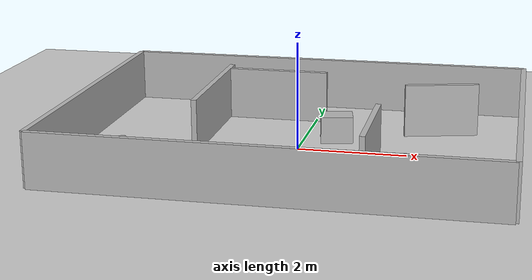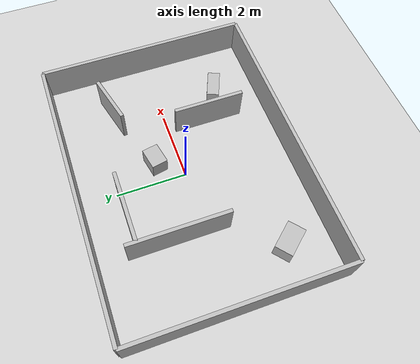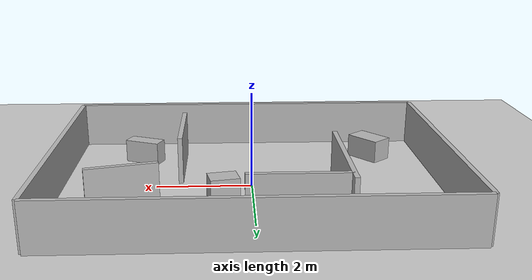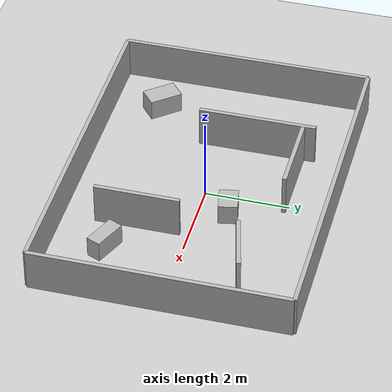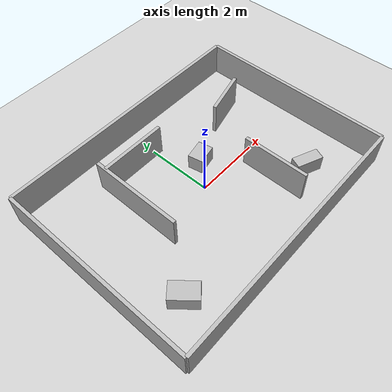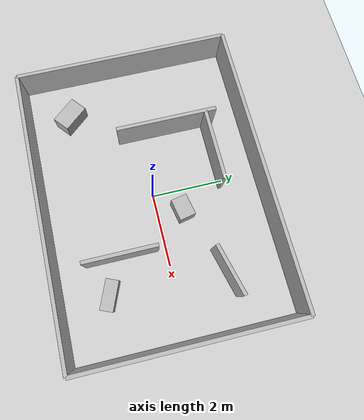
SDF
<?xml version="1.0" ?>
<sdf version="1.6">
  <world name="asymmetric_world">

    <include>
      <uri>model://sun</uri>
    </include>

    <include>
      <uri>model://ground_plane</uri>
    </include>

    <physics name="default_physics" default="0" type="ode">
      <max_step_size>0.001</max_step_size>
      <real_time_factor>1.0</real_time_factor>
      <real_time_update_rate>1000</real_time_update_rate>
    </physics>

    <!-- Outer Boundary Walls -->
    <!-- Room is about 8m x 6m -->

    <!-- North wall -->
    <model name="north_wall">
      <static>true</static>
      <pose>0 3 0.5 0 0 0</pose>
      <link name="link">
        <collision name="collision">
          <geometry>
            <box>
              <size>8.0 0.1 1.0</size>
            </box>
          </geometry>
        </collision>
        <visual name="visual">
          <geometry>
            <box>
              <size>8.0 0.1 1.0</size>
            </box>
          </geometry>
        </visual>
      </link>
    </model>

    <!-- South wall -->
    <model name="south_wall">
      <static>true</static>
      <pose>0 -3 0.5 0 0 0</pose>
      <link name="link">
        <collision name="collision">
          <geometry>
            <box>
              <size>8.0 0.1 1.0</size>
            </box>
          </geometry>
        </collision>
        <visual name="visual">
          <geometry>
            <box>
              <size>8.0 0.1 1.0</size>
            </box>
          </geometry>
        </visual>
      </link>
    </model>

    <!-- West wall -->
    <model name="west_wall">
      <static>true</static>
      <pose>-4 0 0.5 0 0 0</pose>
      <link name="link">
        <collision name="collision">
          <geometry>
            <box>
              <size>0.1 6.0 1.0</size>
            </box>
          </geometry>
        </collision>
        <visual name="visual">
          <geometry>
            <box>
              <size>0.1 6.0 1.0</size>
            </box>
          </geometry>
        </visual>
      </link>
    </model>

    <!-- East wall -->
    <model name="east_wall">
      <static>true</static>
      <pose>4 0 0.5 0 0 0</pose>
      <link name="link">
        <collision name="collision">
          <geometry>
            <box>
              <size>0.1 6.0 1.0</size>
            </box>
          </geometry>
        </collision>
        <visual name="visual">
          <geometry>
            <box>
              <size>0.1 6.0 1.0</size>
            </box>
          </geometry>
        </visual>
      </link>
    </model>

    <!-- Internal Asymmetric Walls -->

    <!-- Vertical wall creating left-side structure -->
    <model name="inner_wall_vertical_left">
      <static>true</static>
      <pose>-1.8 0.8 0.5 0 0 0</pose>
      <link name="link">
        <collision name="collision">
          <geometry>
            <box>
              <size>0.1 2.8 1.0</size>
            </box>
          </geometry>
        </collision>
        <visual name="visual">
          <geometry>
            <box>
              <size>0.1 2.8 1.0</size>
            </box>
          </geometry>
        </visual>
      </link>
    </model>

    <!-- Horizontal wall forming an L shape -->
    <model name="inner_wall_horizontal_left">
      <static>true</static>
      <pose>-0.8 1.9 0.5 0 0 0</pose>
      <link name="link">
        <collision name="collision">
          <geometry>
            <box>
              <size>2.0 0.1 1.0</size>
            </box>
          </geometry>
        </collision>
        <visual name="visual">
          <geometry>
            <box>
              <size>2.0 0.1 1.0</size>
            </box>
          </geometry>
        </visual>
      </link>
    </model>

    <!-- Short wall creating a partial corridor -->
    <model name="short_corridor_wall">
      <static>true</static>
      <pose>1.5 -1.2 0.5 0 0 0</pose>
      <link name="link">
        <collision name="collision">
          <geometry>
            <box>
              <size>0.1 2.0 1.0</size>
            </box>
          </geometry>
        </collision>
        <visual name="visual">
          <geometry>
            <box>
              <size>0.1 2.0 1.0</size>
            </box>
          </geometry>
        </visual>
      </link>
    </model>

    <!-- Small offset wall near top-right -->
    <model name="offset_wall_top_right">
      <static>true</static>
      <pose>2.5 1.4 0.5 0 0 0.25</pose>
      <link name="link">
        <collision name="collision">
          <geometry>
            <box>
              <size>1.4 0.1 1.0</size>
            </box>
          </geometry>
        </collision>
        <visual name="visual">
          <geometry>
            <box>
              <size>1.4 0.1 1.0</size>
            </box>
          </geometry>
        </visual>
      </link>
    </model>

    <!-- Boxes / Obstacles -->

    <model name="box_obstacle_1">
      <static>true</static>
      <pose>0.6 0.7 0.25 0 0 0.2</pose>
      <link name="link">
        <collision name="collision">
          <geometry>
            <box>
              <size>0.6 0.45 0.5</size>
            </box>
          </geometry>
        </collision>
        <visual name="visual">
          <geometry>
            <box>
              <size>0.6 0.45 0.5</size>
            </box>
          </geometry>
        </visual>
      </link>
    </model>

    <model name="box_obstacle_2">
      <static>true</static>
      <pose>2.4 -1.7 0.25 0 0 -0.4</pose>
      <link name="link">
        <collision name="collision">
          <geometry>
            <box>
              <size>0.8 0.35 0.5</size>
            </box>
          </geometry>
        </collision>
        <visual name="visual">
          <geometry>
            <box>
              <size>0.8 0.35 0.5</size>
            </box>
          </geometry>
        </visual>
      </link>
    </model>

    <model name="box_obstacle_3">
      <static>true</static>
      <pose>-2.8 -1.8 0.25 0 0 0.7</pose>
      <link name="link">
        <collision name="collision">
          <geometry>
            <box>
              <size>0.5 0.8 0.5</size>
            </box>
          </geometry>
        </collision>
        <visual name="visual">
          <geometry>
            <box>
              <size>0.5 0.8 0.5</size>
            </box>
          </geometry>
        </visual>
      </link>
    </model>

  </world>
</sdf>
